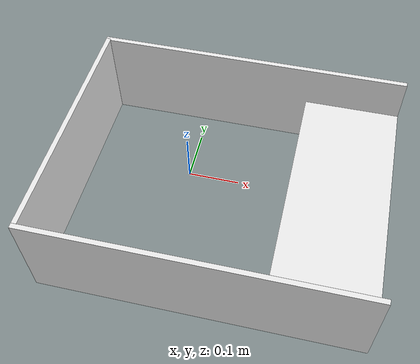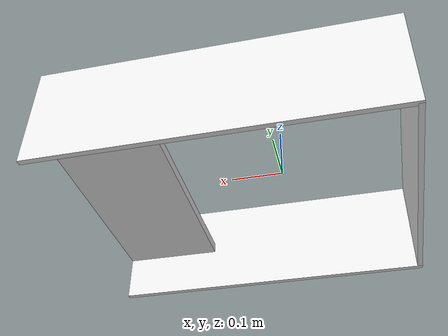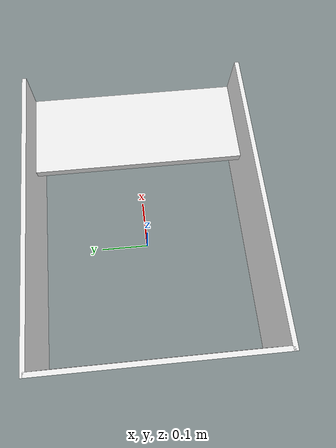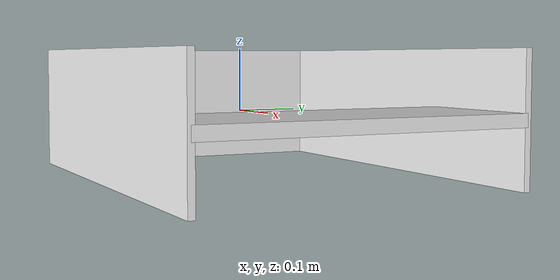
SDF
<sdf version='1.7'>
  <model name='obstacle'>
    <joint name='back_wall_fixed_joint' type='fixed'>
      <pose relative_to='__model__'>0 0 0 0 -0 0</pose>
      <parent>world</parent>
      <child>back_wall</child>
    </joint>
    <link name='back_wall'>
      <pose relative_to='back_wall_fixed_joint'>0 0 0 0 -0 0</pose>
      <inertial>
        <pose>0 0 0 0 -0 0</pose>
        <mass>1</mass>
        <inertia>
          <ixx>1</ixx>
          <ixy>0</ixy>
          <ixz>0</ixz>
          <iyy>1</iyy>
          <iyz>0</iyz>
          <izz>1</izz>
        </inertia>
      </inertial>
      <collision name='back_wall_collision'>
        <pose>-0.245 0 0 0 -0 0</pose>
        <geometry>
          <box>
            <size>0.01 0.5 0.2</size>
          </box>
        </geometry>
        <surface>
          <contact>
            <ode/>
          </contact>
          <friction>
            <ode/>
          </friction>
        </surface>
      </collision>
      <visual name='back_wall_visual'>
        <pose>-0.245 0 0 0 -0 0</pose>
        <geometry>
          <box>
            <size>0.01 0.5 0.2</size>
          </box>
        </geometry>
        <material>
          <script>
            <name>Gazebo/White</name>
            <uri>file://media/materials/scripts/gazebo.material</uri>
          </script>
        </material>
      </visual>
    </link>
    <joint name='left_wall_fixed_joint' type='fixed'>
      <pose relative_to='__model__'>0 0 0 0 -0 0</pose>
      <parent>world</parent>
      <child>left_wall</child>
    </joint>
    <link name='left_wall'>
      <pose relative_to='left_wall_fixed_joint'>0 0 0 0 -0 0</pose>
      <inertial>
        <pose>0 0 0 0 -0 0</pose>
        <mass>1</mass>
        <inertia>
          <ixx>1</ixx>
          <ixy>0</ixy>
          <ixz>0</ixz>
          <iyy>1</iyy>
          <iyz>0</iyz>
          <izz>1</izz>
        </inertia>
      </inertial>
      <collision name='left_wall_collision'>
        <pose>0.075 0.25 0 0 -0 1.5708</pose>
        <geometry>
          <box>
            <size>0.01 0.65 0.2</size>
          </box>
        </geometry>
        <surface>
          <contact>
            <ode/>
          </contact>
          <friction>
            <ode/>
          </friction>
        </surface>
      </collision>
      <visual name='left_wall_visual'>
        <pose>0.075 0.25 0 0 -0 1.5708</pose>
        <geometry>
          <box>
            <size>0.01 0.65 0.2</size>
          </box>
        </geometry>
        <material>
          <script>
            <name>Gazebo/White</name>
            <uri>file://media/materials/scripts/gazebo.material</uri>
          </script>
        </material>
      </visual>
    </link>
    <joint name='obstacle_fixed_joint' type='fixed'>
      <pose relative_to='__model__'>0 0 0 0 -0 0</pose>
      <parent>world</parent>
      <child>obstacle</child>
    </joint>
    <link name='obstacle'>
      <pose relative_to='obstacle_fixed_joint'>0 0 0 0 -0 0</pose>
      <inertial>
        <pose>0 0 0 0 -0 0</pose>
        <mass>1</mass>
        <inertia>
          <ixx>1</ixx>
          <ixy>0</ixy>
          <ixz>0</ixz>
          <iyy>1</iyy>
          <iyz>0</iyz>
          <izz>1</izz>
        </inertia>
      </inertial>
      <collision name='obstacle_collision'>
        <pose>0.3 0 0 0 -0 0</pose>
        <geometry>
          <box>
            <size>0.2 0.5 0.02</size>
          </box>
        </geometry>
        <surface>
          <contact>
            <ode>
              <kp>100000</kp>
              <kd>1</kd>
            </ode>
          </contact>
          <friction>
            <ode>
              <mu>1000</mu>
              <mu2>1000</mu2>
            </ode>
          </friction>
        </surface>
      </collision>
      <visual name='obstacle_visual'>
        <pose>0.3 0 0 0 -0 0</pose>
        <geometry>
          <box>
            <size>0.2 0.5 0.02</size>
          </box>
        </geometry>
        <material>
          <script>
            <name>Gazebo/White</name>
            <uri>file://media/materials/scripts/gazebo.material</uri>
          </script>
        </material>
      </visual>
    </link>
    <joint name='right_wall_fixed_joint' type='fixed'>
      <pose relative_to='__model__'>0 0 0 0 -0 0</pose>
      <parent>world</parent>
      <child>right_wall</child>
    </joint>
    <link name='right_wall'>
      <pose relative_to='right_wall_fixed_joint'>0 0 0 0 -0 0</pose>
      <inertial>
        <pose>0 0 0 0 -0 0</pose>
        <mass>1</mass>
        <inertia>
          <ixx>1</ixx>
          <ixy>0</ixy>
          <ixz>0</ixz>
          <iyy>1</iyy>
          <iyz>0</iyz>
          <izz>1</izz>
        </inertia>
      </inertial>
      <collision name='right_wall_collision'>
        <pose>0.075 -0.25 0 0 -0 1.5708</pose>
        <geometry>
          <box>
            <size>0.01 0.65 0.2</size>
          </box>
        </geometry>
        <surface>
          <contact>
            <ode/>
          </contact>
          <friction>
            <ode/>
          </friction>
        </surface>
      </collision>
      <visual name='right_wall_visual'>
        <pose>0.075 -0.25 0 0 -0 1.5708</pose>
        <geometry>
          <box>
            <size>0.01 0.65 0.2</size>
          </box>
        </geometry>
        <material>
          <script>
            <name>Gazebo/White</name>
            <uri>file://media/materials/scripts/gazebo.material</uri>
          </script>
        </material>
      </visual>
    </link>
    <static>1</static>
  </model>
</sdf>
